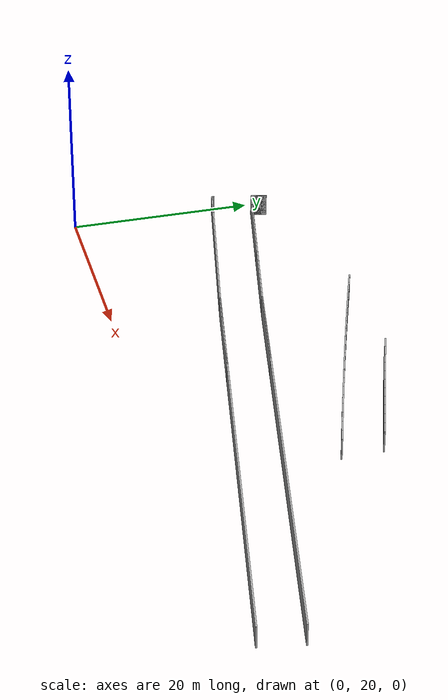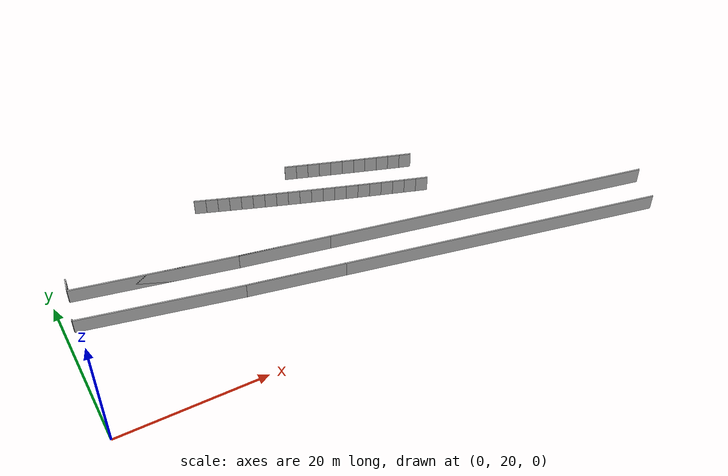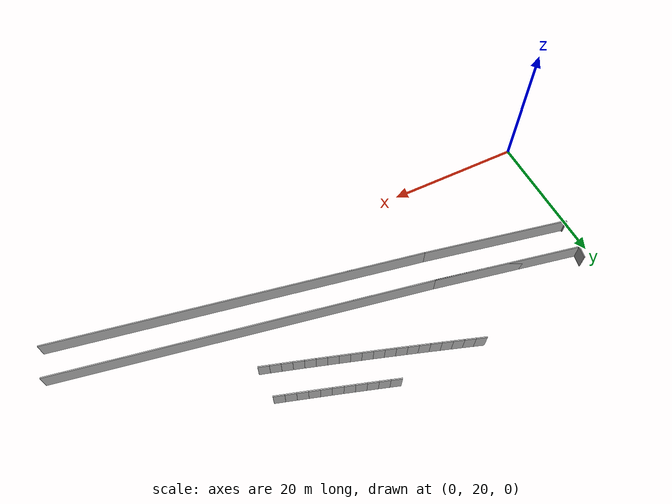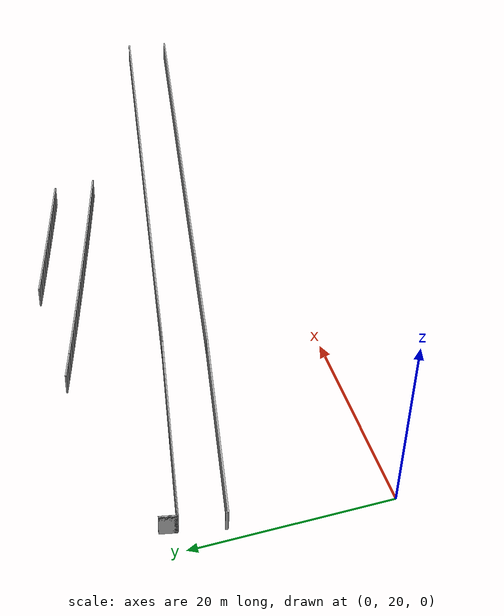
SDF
<sdf version="1.6">
 <model name="sps_0802">
  <static>1</static>
  <allow_auto_disable>0</allow_auto_disable>
  <link name="Wall27">
   <collision name="collision"><geometry><box><size>21.2884 0.15 2.5</size></box></geometry></collision>
   <visual name="visual">
    <geometry><box><size>21.2884 0.15 2.5</size></box></geometry>
    <transparency>0.0</transparency>
   </visual>
   <pose>11.6385 33.6256 1.25 0 -0 2.93723</pose>
  </link>
  <link name="Wall282">
   <collision name="collision"><geometry><box><size>1.74962 0.15 2.5</size></box></geometry></collision>
   <visual name="visual">
    <geometry><box><size>1.74962 0.15 2.5</size></box></geometry>
    <transparency>0.0</transparency>
   </visual>
   <pose>2.29986 41.0501 1.25 0 -0 1.36638</pose>
  </link>
  <link name="Wall284">
   <collision name="collision"><geometry><box><size>11.7016 0.15 2.5</size></box></geometry></collision>
   <visual name="visual">
    <geometry><box><size>11.7016 0.15 2.5</size></box></geometry>
    <transparency>0.0</transparency>
   </visual>
   <pose>28.7219 34.7762 1.25 0 -0 2.95339</pose>
  </link>
  <link name="Wall353">
   <collision name="collision"><geometry><box><size>12.6313 0.15 2.5</size></box></geometry></collision>
   <visual name="visual">
    <geometry><box><size>12.6313 0.15 2.5</size></box></geometry>
    <transparency>0.0</transparency>
   </visual>
   <pose>28.2653 30.2838 1.25 0 -0 2.95338</pose>
  </link>
  <link name="Wall432">
   <collision name="collision"><geometry><box><size>0.249531 0.15 2.5</size></box></geometry></collision>
   <visual name="visual">
    <geometry><box><size>0.249531 0.15 2.5</size></box></geometry>
    <transparency>0.0</transparency>
   </visual>
   <pose>1.24105 35.9079 1.25 0 -0 1.36736</pose>
  </link>
  <link name="Wall611">
   <collision name="collision"><geometry><box><size>21.2955 0.15 2.5</size></box></geometry></collision>
   <visual name="visual">
    <geometry><box><size>21.2955 0.15 2.5</size></box></geometry>
    <transparency>0.0</transparency>
   </visual>
   <pose>12.5484 38.0322 1.25 0 -0 2.93719</pose>
  </link>
  <link name="Wall997">
   <collision name="collision"><geometry><box><size>52.9169 0.15 2.5</size></box></geometry></collision>
   <visual name="visual">
    <geometry><box><size>52.9169 0.15 2.5</size></box></geometry>
    <transparency>0.0</transparency>
   </visual>
   <pose>48.0525 26.515 1.25 0 -0 2.95338</pose>
  </link>
  <link name="Wall998">
   <collision name="collision"><geometry><box><size>21.2884 0.15 2.5</size></box></geometry></collision>
   <visual name="visual">
    <geometry><box><size>21.2884 0.15 2.5</size></box></geometry>
    <transparency>0.0</transparency>
   </visual>
   <pose>11.6385 33.6256 1.25 0 -0 2.93723</pose>
  </link>
  <link name="Wall999">
   <collision name="collision"><geometry><box><size>0.249531 0.15 2.5</size></box></geometry></collision>
   <visual name="visual">
    <geometry><box><size>0.249531 0.15 2.5</size></box></geometry>
    <transparency>0.0</transparency>
   </visual>
   <pose>1.24105 35.9079 1.25 0 -0 1.36736</pose>
  </link>
  <link name="Wall1003">
   <collision name="collision"><geometry><box><size>1.74962 0.15 2.5</size></box></geometry></collision>
   <visual name="visual">
    <geometry><box><size>1.74962 0.15 2.5</size></box></geometry>
    <transparency>0.0</transparency>
   </visual>
   <pose>2.29986 41.0501 1.25 0 0 -1.77521</pose>
  </link>
  <link name="Wall1004">
   <collision name="collision"><geometry><box><size>21.2955 0.15 2.5</size></box></geometry></collision>
   <visual name="visual">
    <geometry><box><size>21.2955 0.15 2.5</size></box></geometry>
    <transparency>0.0</transparency>
   </visual>
   <pose>12.5484 38.0322 1.25 0 0 -0.204404</pose>
  </link>
  <link name="Wall1005">
   <collision name="collision"><geometry><box><size>52.7767 0.15 2.5</size></box></geometry></collision>
   <visual name="visual">
    <geometry><box><size>52.7767 0.15 2.5</size></box></geometry>
    <transparency>0.0</transparency>
   </visual>
   <pose>48.8968 30.9339 1.25 0 0 -0.188199</pose>
  </link>
  <link name="Wall8838">
   <collision name="collision"><geometry><box><size>1.49903 0.15 2.5</size></box></geometry></collision>
   <visual name="visual">
    <geometry><box><size>1.49903 0.15 2.5</size></box></geometry>
    <transparency>0.0</transparency>
   </visual>
   <pose>21.887 45.8946 1.25 0 0 -0.333983</pose>
  </link>
  <link name="Wall8839">
   <collision name="collision"><geometry><box><size>1.49889 0.15 2.5</size></box></geometry></collision>
   <visual name="visual">
    <geometry><box><size>1.49889 0.15 2.5</size></box></geometry>
    <transparency>0.0</transparency>
   </visual>
   <pose>23.3035 45.4043 1.25 0 0 -0.332464</pose>
  </link>
  <link name="Wall8840">
   <collision name="collision"><geometry><box><size>1.49909 0.15 2.5</size></box></geometry></collision>
   <visual name="visual">
    <geometry><box><size>1.49909 0.15 2.5</size></box></geometry>
    <transparency>0.0</transparency>
   </visual>
   <pose>24.7208 44.9162 1.25 0 0 -0.330866</pose>
  </link>
  <link name="Wall8841">
   <collision name="collision"><geometry><box><size>1.49896 0.15 2.5</size></box></geometry></collision>
   <visual name="visual">
    <geometry><box><size>1.49896 0.15 2.5</size></box></geometry>
    <transparency>0.0</transparency>
   </visual>
   <pose>26.1388 44.4303 1.25 0 0 -0.329348</pose>
  </link>
  <link name="Wall8842">
   <collision name="collision"><geometry><box><size>1.49883 0.15 2.5</size></box></geometry></collision>
   <visual name="visual">
    <geometry><box><size>1.49883 0.15 2.5</size></box></geometry>
    <transparency>0.0</transparency>
   </visual>
   <pose>27.5575 43.9466 1.25 0 0 -0.327829</pose>
  </link>
  <link name="Wall8843">
   <collision name="collision"><geometry><box><size>1.49897 0.15 2.5</size></box></geometry></collision>
   <visual name="visual">
    <geometry><box><size>1.49897 0.15 2.5</size></box></geometry>
    <transparency>0.0</transparency>
   </visual>
   <pose>28.977 43.4652 1.25 0 0 -0.326077</pose>
  </link>
  <link name="Wall8844">
   <collision name="collision"><geometry><box><size>1.49886 0.15 2.5</size></box></geometry></collision>
   <visual name="visual">
    <geometry><box><size>1.49886 0.15 2.5</size></box></geometry>
    <transparency>0.0</transparency>
   </visual>
   <pose>30.3973 42.9861 1.25 0 0 -0.324596</pose>
  </link>
  <link name="Wall8845">
   <collision name="collision"><geometry><box><size>1.49896 0.15 2.5</size></box></geometry></collision>
   <visual name="visual">
    <geometry><box><size>1.49896 0.15 2.5</size></box></geometry>
    <transparency>0.0</transparency>
   </visual>
   <pose>31.8184 42.5092 1.25 0 0 -0.322987</pose>
  </link>
  <link name="Wall8846">
   <collision name="collision"><geometry><box><size>1.49909 0.15 2.5</size></box></geometry></collision>
   <visual name="visual">
    <geometry><box><size>1.49909 0.15 2.5</size></box></geometry>
    <transparency>0.0</transparency>
   </visual>
   <pose>33.2403 42.0346 1.25 0 0 -0.321326</pose>
  </link>
  <link name="Wall8847">
   <collision name="collision"><geometry><box><size>1.49884 0.15 2.5</size></box></geometry></collision>
   <visual name="visual">
    <geometry><box><size>1.49884 0.15 2.5</size></box></geometry>
    <transparency>0.0</transparency>
   </visual>
   <pose>34.6628 41.5622 1.25 0 0 -0.319922</pose>
  </link>
  <link name="Wall8848">
   <collision name="collision"><geometry><box><size>1.49891 0.15 2.5</size></box></geometry></collision>
   <visual name="visual">
    <geometry><box><size>1.49891 0.15 2.5</size></box></geometry>
    <transparency>0.0</transparency>
   </visual>
   <pose>36.0861 41.092 1.25 0 0 -0.318235</pose>
  </link>
  <link name="Wall8849">
   <collision name="collision"><geometry><box><size>1.49892 0.15 2.5</size></box></geometry></collision>
   <visual name="visual">
    <geometry><box><size>1.49892 0.15 2.5</size></box></geometry>
    <transparency>0.0</transparency>
   </visual>
   <pose>37.5101 40.6241 1.25 0 0 -0.31669</pose>
  </link>
  <link name="Wall8850">
   <collision name="collision"><geometry><box><size>1.49905 0.15 2.5</size></box></geometry></collision>
   <visual name="visual">
    <geometry><box><size>1.49905 0.15 2.5</size></box></geometry>
    <transparency>0.0</transparency>
   </visual>
   <pose>38.9349 40.1584 1.25 0 0 -0.31512</pose>
  </link>
  <link name="Wall8851">
   <collision name="collision"><geometry><box><size>1.49883 0.15 2.5</size></box></geometry></collision>
   <visual name="visual">
    <geometry><box><size>1.49883 0.15 2.5</size></box></geometry>
    <transparency>0.0</transparency>
   </visual>
   <pose>40.3604 39.695 1.25 0 0 -0.313496</pose>
  </link>
  <link name="Wall8852">
   <collision name="collision"><geometry><box><size>1.4992 0.15 2.5</size></box></geometry></collision>
   <visual name="visual">
    <geometry><box><size>1.4992 0.15 2.5</size></box></geometry>
    <transparency>0.0</transparency>
   </visual>
   <pose>41.7867 39.2338 1.25 0 0 -0.312005</pose>
  </link>
  <link name="Wall8853">
   <collision name="collision"><geometry><box><size>1.49875 0.15 2.5</size></box></geometry></collision>
   <visual name="visual">
    <geometry><box><size>1.49875 0.15 2.5</size></box></geometry>
    <transparency>0.0</transparency>
   </visual>
   <pose>43.2137 38.7749 1.25 0 0 -0.310263</pose>
  </link>
  <link name="Wall8854">
   <collision name="collision"><geometry><box><size>1.49901 0.15 2.5</size></box></geometry></collision>
   <visual name="visual">
    <geometry><box><size>1.49901 0.15 2.5</size></box></geometry>
    <transparency>0.0</transparency>
   </visual>
   <pose>44.6413 38.3184 1.25 0 0 -0.308668</pose>
  </link>
  <link name="Wall8855">
   <collision name="collision"><geometry><box><size>1.499 0.15 2.5</size></box></geometry></collision>
   <visual name="visual">
    <geometry><box><size>1.499 0.15 2.5</size></box></geometry>
    <transparency>0.0</transparency>
   </visual>
   <pose>46.0698 37.8641 1.25 0 0 -0.307174</pose>
  </link>
  <link name="Wall8856">
   <collision name="collision"><geometry><box><size>1.49884 0.15 2.5</size></box></geometry></collision>
   <visual name="visual">
    <geometry><box><size>1.49884 0.15 2.5</size></box></geometry>
    <transparency>0.0</transparency>
   </visual>
   <pose>47.499 37.412 1.25 0 0 -0.305627</pose>
  </link>
  <link name="Wall8857">
   <collision name="collision"><geometry><box><size>1.499 0.15 2.5</size></box></geometry></collision>
   <visual name="visual">
    <geometry><box><size>1.499 0.15 2.5</size></box></geometry>
    <transparency>0.0</transparency>
   </visual>
   <pose>48.9288 36.9621 1.25 0 0 -0.304058</pose>
  </link>
  <link name="Wall9927">
   <collision name="collision"><geometry><box><size>1.49226 0.15 2.5</size></box></geometry></collision>
   <visual name="visual">
    <geometry><box><size>1.49226 0.15 2.5</size></box></geometry>
    <transparency>0.0</transparency>
   </visual>
   <pose>34.5481 45.9628 1.25 0 0 -0.321427</pose>
  </link>
  <link name="Wall9928">
   <collision name="collision"><geometry><box><size>1.49253 0.15 2.5</size></box></geometry></collision>
   <visual name="visual">
    <geometry><box><size>1.49253 0.15 2.5</size></box></geometry>
    <transparency>0.0</transparency>
   </visual>
   <pose>35.9645 45.4924 1.25 0 0 -0.319901</pose>
  </link>
  <link name="Wall9929">
   <collision name="collision"><geometry><box><size>1.49232 0.15 2.5</size></box></geometry></collision>
   <visual name="visual">
    <geometry><box><size>1.49232 0.15 2.5</size></box></geometry>
    <transparency>0.0</transparency>
   </visual>
   <pose>37.3816 45.0242 1.25 0 0 -0.31831</pose>
  </link>
  <link name="Wall9930">
   <collision name="collision"><geometry><box><size>1.49237 0.15 2.5</size></box></geometry></collision>
   <visual name="visual">
    <geometry><box><size>1.49237 0.15 2.5</size></box></geometry>
    <transparency>0.0</transparency>
   </visual>
   <pose>38.7993 44.5584 1.25 0 0 -0.316577</pose>
  </link>
  <link name="Wall9931">
   <collision name="collision"><geometry><box><size>1.49233 0.15 2.5</size></box></geometry></collision>
   <visual name="visual">
    <geometry><box><size>1.49233 0.15 2.5</size></box></geometry>
    <transparency>0.0</transparency>
   </visual>
   <pose>40.2179 44.0948 1.25 0 0 -0.315167</pose>
  </link>
  <link name="Wall9932">
   <collision name="collision"><geometry><box><size>1.49252 0.15 2.5</size></box></geometry></collision>
   <visual name="visual">
    <geometry><box><size>1.49252 0.15 2.5</size></box></geometry>
    <transparency>0.0</transparency>
   </visual>
   <pose>41.6372 43.6334 1.25 0 0 -0.313448</pose>
  </link>
  <link name="Wall9933">
   <collision name="collision"><geometry><box><size>1.49243 0.15 2.5</size></box></geometry></collision>
   <visual name="visual">
    <geometry><box><size>1.49243 0.15 2.5</size></box></geometry>
    <transparency>0.0</transparency>
   </visual>
   <pose>43.0573 43.1743 1.25 0 0 -0.311922</pose>
  </link>
  <link name="Wall9934">
   <collision name="collision"><geometry><box><size>1.49226 0.15 2.5</size></box></geometry></collision>
   <visual name="visual">
    <geometry><box><size>1.49226 0.15 2.5</size></box></geometry>
    <transparency>0.0</transparency>
   </visual>
   <pose>44.478 42.7174 1.25 0 0 -0.310368</pose>
  </link>
  <link name="Wall9935">
   <collision name="collision"><geometry><box><size>1.49237 0.15 2.5</size></box></geometry></collision>
   <visual name="visual">
    <geometry><box><size>1.49237 0.15 2.5</size></box></geometry>
    <transparency>0.0</transparency>
   </visual>
   <pose>45.8993 42.2628 1.25 0 0 -0.308714</pose>
  </link>
  <link name="Wall9936">
   <collision name="collision"><geometry><box><size>1.49251 0.15 2.5</size></box></geometry></collision>
   <visual name="visual">
    <geometry><box><size>1.49251 0.15 2.5</size></box></geometry>
    <transparency>0.0</transparency>
   </visual>
   <pose>47.3216 41.8104 1.25 0 0 -0.307266</pose>
  </link>
  <link name="Wall9937">
   <collision name="collision"><geometry><box><size>1.49236 0.15 2.5</size></box></geometry></collision>
   <visual name="visual">
    <geometry><box><size>1.49236 0.15 2.5</size></box></geometry>
    <transparency>0.0</transparency>
   </visual>
   <pose>48.7445 41.3602 1.25 0 0 -0.305583</pose>
  </link>
 </model>
</sdf>
